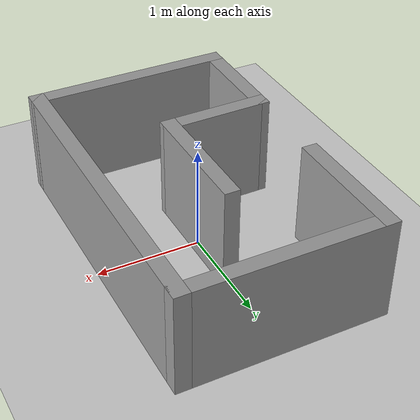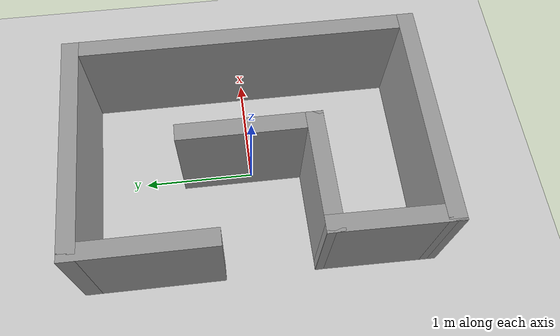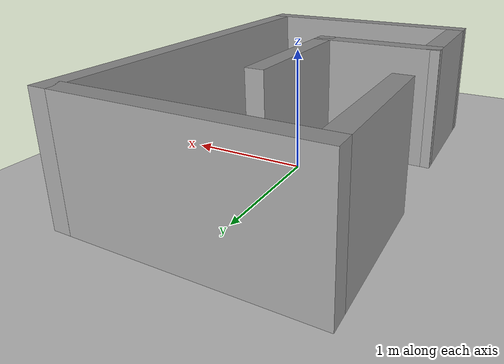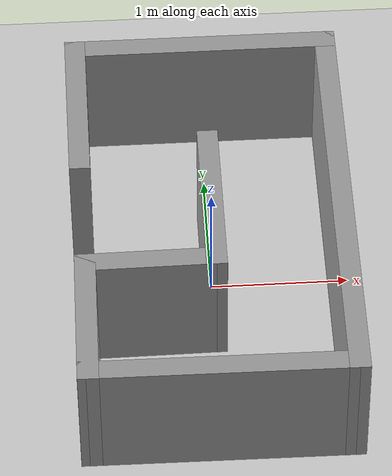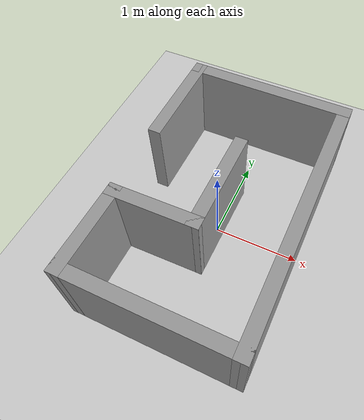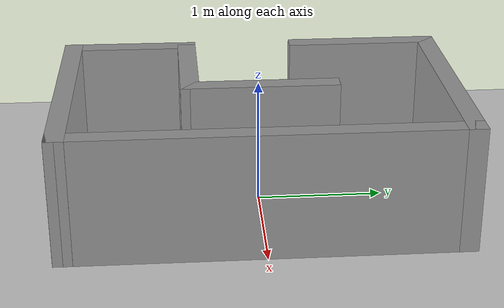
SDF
<?xml version="1.0"?>
<sdf version="1.6">
  <world name="maze_0_world">
    <plugin name="gazebo_ros_factory" filename="libgazebo_ros_factory.so"/>

    <!-- Basic environment -->
    <include><uri>model://ground_plane</uri></include>
    <include><uri>model://sun</uri></include>

    <!-- Single maze declaration -->
    <model name="maze_0">
      <static>true</static>
      <include>
        <uri>model://maze_0</uri>
        <pose>0 0 0 0 0 0</pose>
      </include>
    </model>

    <scene>
      <shadows>false</shadows>
    </scene>

    <gui fullscreen='0'>
      <camera name='user_camera'>
        <pose frame=''>0.319654 -0.235002 9.29441 0 1.5138 0.009599</pose>
        <view_controller>orbit</view_controller>
        <projection_type>perspective</projection_type>
      </camera>
    </gui>

    <physics type="ode">
      <real_time_update_rate>1000.0</real_time_update_rate>
      <max_step_size>0.001</max_step_size>
      <real_time_factor>1</real_time_factor>
      <ode>
        <solver>
          <type>quick</type>
          <iters>150</iters>
          <precon_iters>0</precon_iters>
          <sor>1.400000</sor>
          <use_dynamic_moi_rescaling>1</use_dynamic_moi_rescaling>
        </solver>
        <constraints>
          <cfm>0.00001</cfm>
          <erp>0.2</erp>
          <contact_max_correcting_vel>2000.000000</contact_max_correcting_vel>
          <contact_surface_layer>0.01000</contact_surface_layer>
        </constraints>
      </ode>
    </physics>

    <!-- Optional: If your maze is static (unchanging), declare it -->
    <model name="maze_0">
      <static>true</static>  <!-- Prevents physics updates for better performance -->
    </model>

  </world>
</sdf>

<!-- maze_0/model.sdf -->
<sdf version='1.7'>
  <model name='maze_0'>
    <pose>0.464802 1.1248 0 0 -0 0</pose>
    <link name='Wall_0'>
      <collision name='Wall_0_Collision'>
        <geometry>
          <box>
            <size>2 0.15 1</size>
          </box>
        </geometry>
        <pose>0 0 0.5 0 -0 0</pose>
      </collision>
      <visual name='Wall_0_Visual'>
        <pose>0 0 0.5 0 -0 0</pose>
        <geometry>
          <box>
            <size>2 0.15 1</size>
          </box>
        </geometry>
        <material>
          <script>
            <uri>file://media/materials/scripts/gazebo.material</uri>
            <name>Gazebo/Grey</name>
          </script>
          <ambient>1 1 1 1</ambient>
        </material>
        <meta>
          <layer>0</layer>
        </meta>
      </visual>
      <pose>0.000198 -1.4998 0 0 -0 3.13619</pose>
    </link>
    <link name='Wall_12'>
      <collision name='Wall_12_Collision'>
        <geometry>
          <box>
            <size>1.25 0.15 1</size>
          </box>
        </geometry>
        <pose>0 0 0.5 0 -0 0</pose>
      </collision>
      <visual name='Wall_12_Visual'>
        <pose>0 0 0.5 0 -0 0</pose>
        <geometry>
          <box>
            <size>1.25 0.15 1</size>
          </box>
        </geometry>
        <material>
          <script>
            <uri>file://media/materials/scripts/gazebo.material</uri>
            <name>Gazebo/Grey</name>
          </script>
          <ambient>1 1 1 1</ambient>
        </material>
        <meta>
          <layer>0</layer>
        </meta>
      </visual>
      <pose>-0.924802 0.955202 0 0 -0 -1.5708</pose>
    </link>
    <link name='Wall_4'>
      <collision name='Wall_4_Collision'>
        <geometry>
          <box>
            <size>1.10021 0.15 1</size>
          </box>
        </geometry>
        <pose>0 0 0.5 0 -0 0</pose>
      </collision>
      <visual name='Wall_4_Visual'>
        <pose>0 0 0.5 0 -0 0</pose>
        <geometry>
          <box>
            <size>1.10021 0.15 1</size>
          </box>
        </geometry>
        <material>
          <script>
            <uri>file://media/materials/scripts/gazebo.material</uri>
            <name>Gazebo/Grey</name>
          </script>
          <ambient>1 1 1 1</ambient>
        </material>
        <meta>
          <layer>0</layer>
        </meta>
      </visual>
      <pose>-0.919802 -1.0198 0 0 -0 1.56027</pose>
    </link>
    <link name='Wall_5'>
      <collision name='Wall_5_Collision'>
        <geometry>
          <box>
            <size>1.07005 0.15 1</size>
          </box>
        </geometry>
        <pose>0 0 0.5 0 -0 0</pose>
      </collision>
      <visual name='Wall_5_Visual'>
        <pose>0 0 0.5 0 -0 0</pose>
        <geometry>
          <box>
            <size>1.07005 0.15 1</size>
          </box>
        </geometry>
        <material>
          <script>
            <uri>file://media/materials/scripts/gazebo.material</uri>
            <name>Gazebo/Grey</name>
          </script>
          <ambient>1 1 1 1</ambient>
        </material>
        <meta>
          <layer>0</layer>
        </meta>
      </visual>
      <pose>-0.454802 -0.539798 0 0 -0 0.010869</pose>
    </link>
    <link name='Wall_6'>
      <collision name='Wall_6_Collision'>
        <geometry>
          <box>
            <size>1.25 0.15 1</size>
          </box>
        </geometry>
        <pose>0 0 0.5 0 -0 0</pose>
      </collision>
      <visual name='Wall_6_Visual'>
        <pose>0 0 0.5 0 -0 0</pose>
        <geometry>
          <box>
            <size>1.25 0.15 1</size>
          </box>
        </geometry>
        <material>
          <script>
            <uri>file://media/materials/scripts/gazebo.material</uri>
            <name>Gazebo/Grey</name>
          </script>
          <ambient>1 1 1 1</ambient>
        </material>
        <meta>
          <layer>0</layer>
        </meta>
      </visual>
      <pose>0.005198 0.015202 0 0 -0 1.5708</pose>
    </link>
    <link name='Wall_8'>
      <collision name='Wall_8_Collision'>
        <geometry>
          <box>
            <size>3.16 0.15 1</size>
          </box>
        </geometry>
        <pose>0 0 0.5 0 -0 0</pose>
      </collision>
      <visual name='Wall_8_Visual'>
        <pose>0 0 0.5 0 -0 0</pose>
        <geometry>
          <box>
            <size>3.16 0.15 1</size>
          </box>
        </geometry>
        <material>
          <script>
            <uri>file://media/materials/scripts/gazebo.material</uri>
            <name>Gazebo/Grey</name>
          </script>
          <ambient>1 1 1 1</ambient>
        </material>
        <meta>
          <layer>0</layer>
        </meta>
      </visual>
      <pose>0.925198 0.000202 0 0 -0 1.5708</pose>
    </link>
    <link name='Wall_9'>
      <collision name='Wall_9_Collision'>
        <geometry>
          <box>
            <size>2 0.15 1</size>
          </box>
        </geometry>
        <pose>0 0 0.5 0 -0 0</pose>
      </collision>
      <visual name='Wall_9_Visual'>
        <pose>0 0 0.5 0 -0 0</pose>
        <geometry>
          <box>
            <size>2 0.15 1</size>
          </box>
        </geometry>
        <material>
          <script>
            <uri>file://media/materials/scripts/gazebo.material</uri>
            <name>Gazebo/Grey</name>
          </script>
          <ambient>1 1 1 1</ambient>
        </material>
        <meta>
          <layer>0</layer>
        </meta>
      </visual>
      <pose>0.000198 1.5052 0 0 -0 3.14159</pose>
    </link>
    <static>1</static>
  </model>
</sdf>
